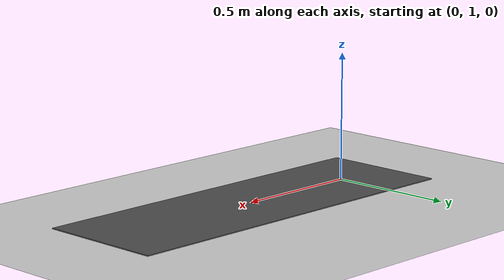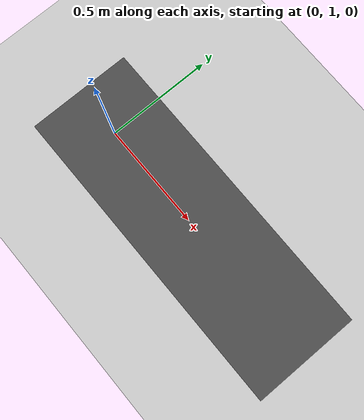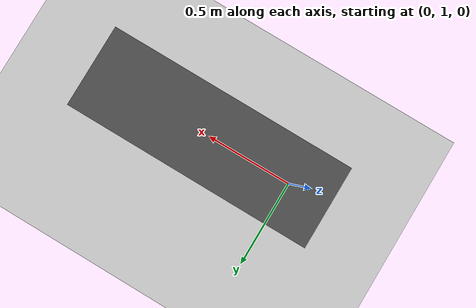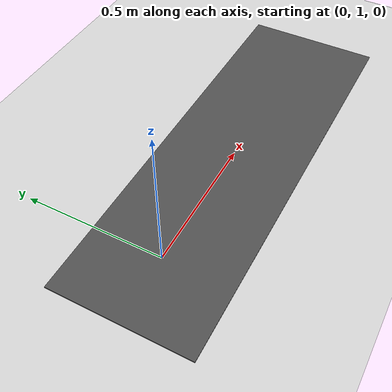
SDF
<sdf version="1.6">
 <world name="default">
  <light name="sun" type="directional">
   <pose>0 0 10 0 -0 0</pose>
   <diffuse>0.8 0.8 0.8 1</diffuse>
   <specular>0.2 0.2 0.2 1</specular>
   <attenuation>
    <range>1000</range>
    <constant>0.9</constant>
    <linear>0.01</linear>
    <quadratic>0.001</quadratic>
   </attenuation>
   <direction>-0.5 0.1 -0.9</direction>
  </light>
  <model name="ground_plane">
   <static>1</static>
   <link name="link">
    <collision name="collision">
     <geometry><plane><normal>0 0 1</normal><size>100 100</size></plane></geometry>
     <surface><friction><ode><mu>100</mu><mu2>50</mu2></ode></friction></surface>
    </collision>
    <visual name="visual">
     <cast_shadows>0</cast_shadows>
     <geometry><plane><normal>0 0 1</normal><size>100 100</size></plane></geometry>
     <material>
      <script><uri>file://media/materials/scripts/gazebo.material</uri><name>Gazebo/Grey</name></script>
     </material>
    </visual>
   </link>
  </model>
  <gravity>0 0 -9.8</gravity>
  <magnetic_field>6e-06 2.3e-05 -4.2e-05</magnetic_field>
  <atmosphere type="adiabatic"/>
  <scene><ambient>0.4 0.4 0.4 1</ambient><background>0.7 0.7 0.7 1</background><shadows>1</shadows></scene>
  <spherical_coordinates>
   <surface_model>EARTH_WGS84</surface_model>
   <latitude_deg>0</latitude_deg>
   <longitude_deg>0</longitude_deg>
   <elevation>0</elevation>
   <heading_deg>0</heading_deg>
  </spherical_coordinates>
  <model name="road_plane_3_1">
   <static>1</static>
   <link name="link">
    <collision name="collision"><geometry><box><size>1.5 0.5 0.005</size></box></geometry></collision>
    <visual name="visual">
     <cast_shadows>0</cast_shadows>
     <geometry><box><size>1.5 0.5 0.005</size></box></geometry>
     <material>
      <script>
       <uri>model://road_plane_3/materials/scripts</uri>
       <uri>model://road_plane_3/materials/textures</uri>
       <name>vrc/road3</name>
      </script>
     </material>
    </visual>
   </link>
   <pose>0.5 1 0 0 -0 0</pose>
  </model>
  <light name="user_directional_light_0" type="directional">
   <pose>-0.125952 -0.010846 1 0 -0 0</pose>
   <diffuse>0.5 0.5 0.5 1</diffuse>
   <specular>0.1 0.1 0.1 1</specular>
   <direction>0.1 0.1 -0.9</direction>
   <attenuation>
    <range>20</range>
    <constant>0.5</constant>
    <linear>0.01</linear>
    <quadratic>0.001</quadratic>
   </attenuation>
  </light>
 </world>
</sdf>
